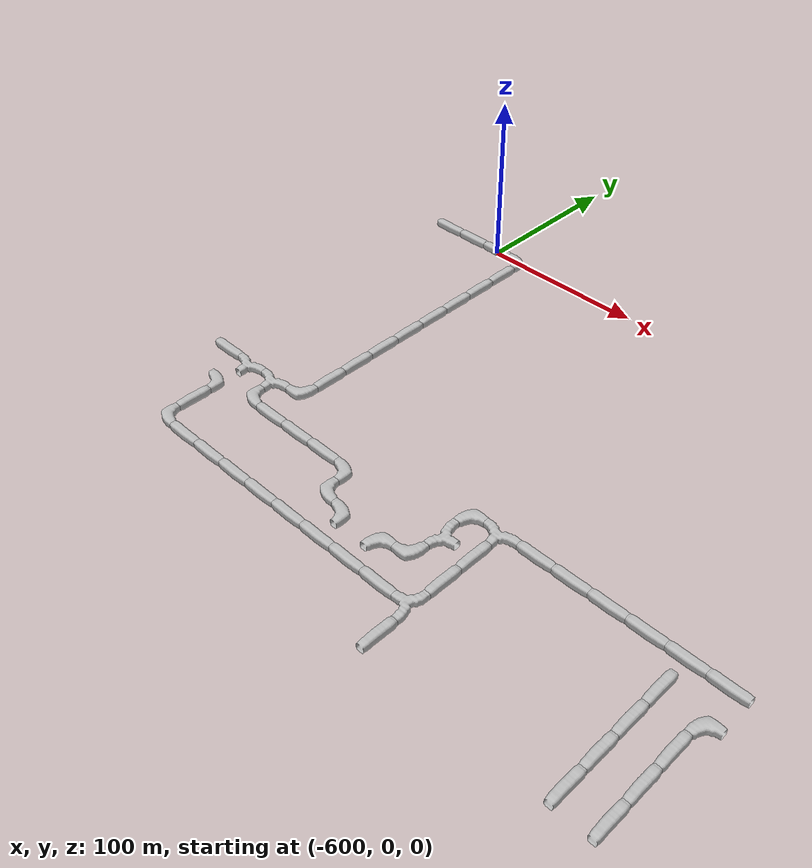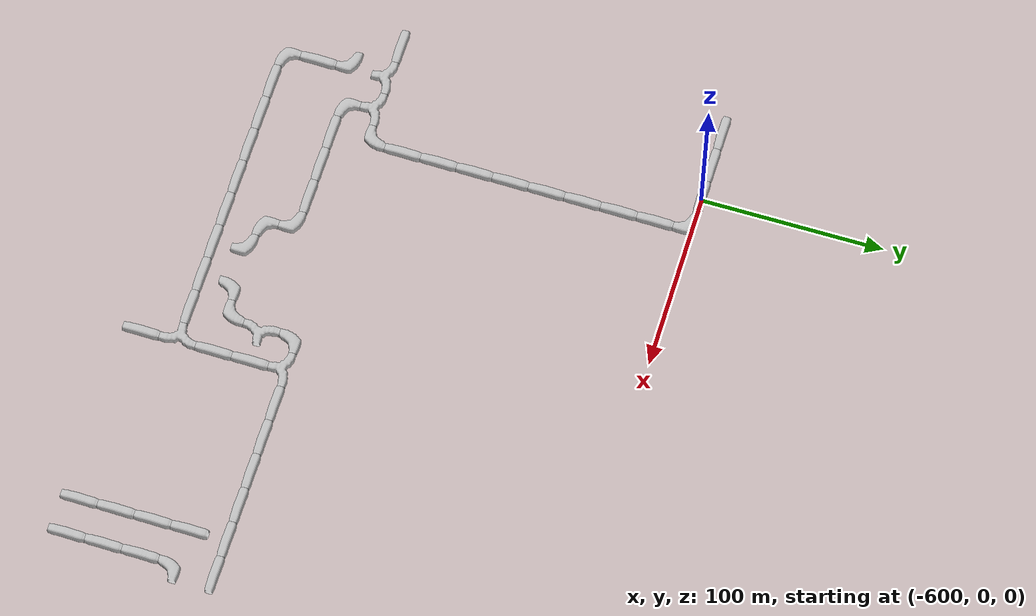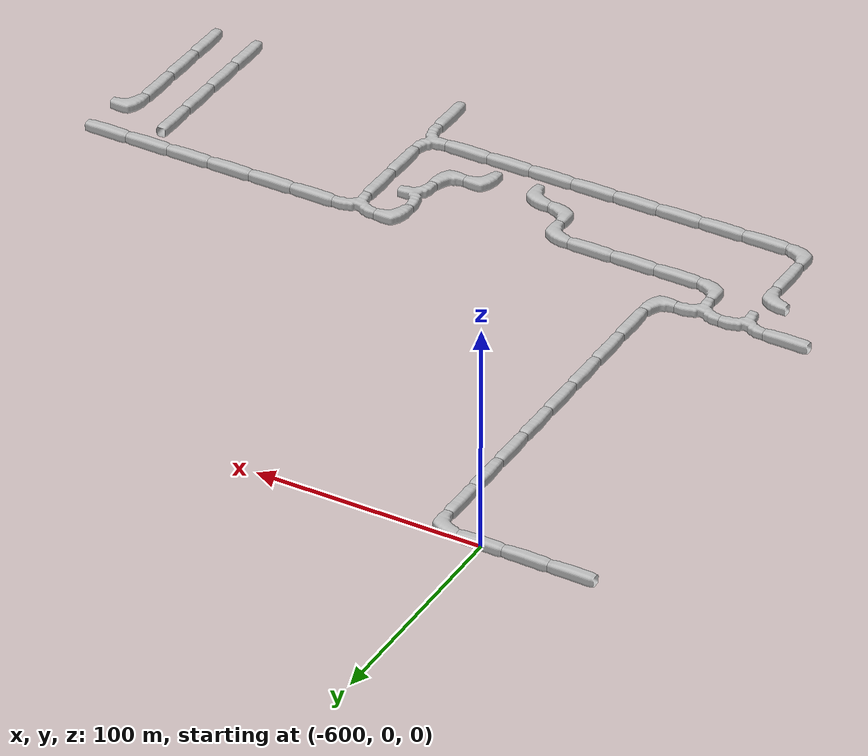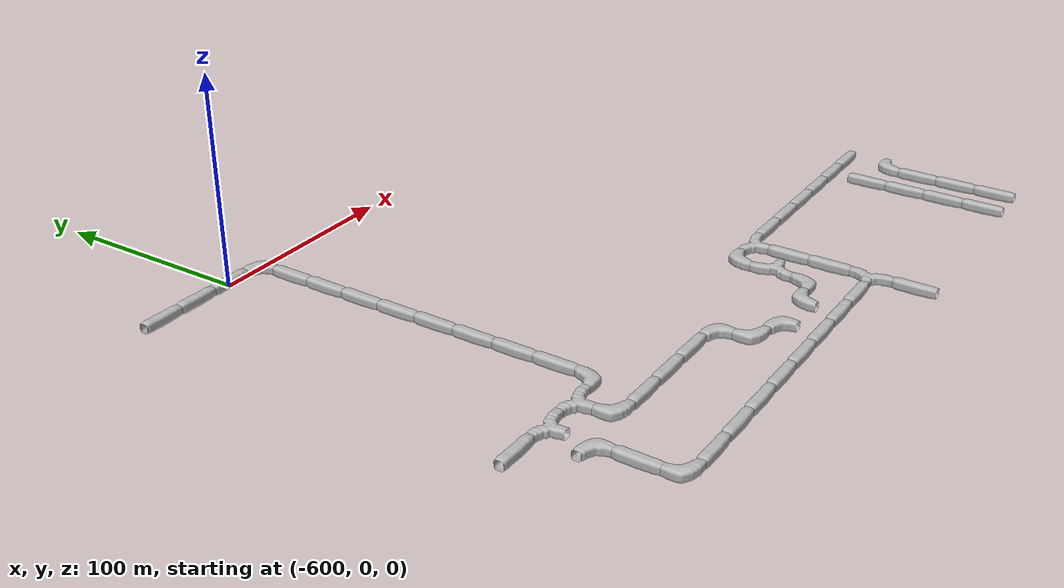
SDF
<sdf version="1.6">
 <world name="cave_32000_64">
  <include>
   <static>true</static>
   <name>cave_-16_-9</name>
   <pose>-320 -180 0 0 0 1.5707963267948966</pose>
   <uri>model://cave_straight_20m</uri>
  </include>
  <include>
   <static>true</static>
   <name>cave_-17_-9</name>
   <pose>-340 -180 0 0 0 1.5707963267948966</pose>
   <uri>model://cave_straight_20m</uri>
  </include>
  <include>
   <static>true</static>
   <name>cave_-18_-9</name>
   <pose>-360 -180 0 0 0 1.5707963267948966</pose>
   <uri>model://cave_straight_20m</uri>
  </include>
  <include>
   <static>true</static>
   <name>cave_-19_-9</name>
   <pose>-380 -180 0 0 0 1.5707963267948966</pose>
   <uri>model://cave_straight_20m</uri>
  </include>
  <include>
   <static>true</static>
   <name>cave_-20_-9</name>
   <pose>-400 -180 0 0 0 1.5707963267948966</pose>
   <uri>model://cave_straight_20m</uri>
  </include>
  <include>
   <static>true</static>
   <name>cave_-21_-9</name>
   <pose>-420 -180 0 0 0 1.5707963267948966</pose>
   <uri>model://cave_straight_20m</uri>
  </include>
  <include>
   <static>true</static>
   <name>cave_-22_-9</name>
   <pose>-440 -180 0 0 0 3.141592653589793</pose>
   <uri>model://cave_3way_20m</uri>
  </include>
  <include>
   <static>true</static>
   <name>cave_-22_-10</name>
   <pose>-440 -200 0 0 0 0.0</pose>
   <uri>model://cave_straight_20m</uri>
  </include>
  <include>
   <static>true</static>
   <name>cave_-22_-11</name>
   <pose>-440 -220 0 0 0 0.0</pose>
   <uri>model://cave_straight_20m</uri>
  </include>
  <include>
   <static>true</static>
   <name>cave_-22_-12</name>
   <pose>-440 -240 0 0 0 1.5707963267948966</pose>
   <uri>model://cave_3way_20m</uri>
  </include>
  <include>
   <static>true</static>
   <name>cave_-22_-13</name>
   <pose>-440 -260 0 0 0 0.0</pose>
   <uri>model://cave_straight_20m</uri>
  </include>
  <include>
   <static>true</static>
   <name>cave_-16_-13</name>
   <pose>-320 -260 0 0 0 0.0</pose>
   <uri>model://cave_straight_20m</uri>
  </include>
  <include>
   <static>true</static>
   <name>cave_-16_-12</name>
   <pose>-320 -240 0 0 0 0.0</pose>
   <uri>model://cave_straight_20m</uri>
  </include>
  <include>
   <static>true</static>
   <name>cave_-16_-11</name>
   <pose>-320 -220 0 0 0 0.0</pose>
   <uri>model://cave_straight_20m</uri>
  </include>
  <include>
   <static>true</static>
   <name>cave_-16_-10</name>
   <pose>-320 -200 0 0 0 -1.5707963267948966</pose>
   <uri>model://cave_L_20m</uri>
  </include>
  <include>
   <static>true</static>
   <name>cave_-17_-13</name>
   <pose>-340 -260 0 0 0 0.0</pose>
   <uri>model://cave_straight_20m</uri>
  </include>
  <include>
   <static>true</static>
   <name>cave_-17_-12</name>
   <pose>-340 -240 0 0 0 0.0</pose>
   <uri>model://cave_straight_20m</uri>
  </include>
  <include>
   <static>true</static>
   <name>cave_-17_-11</name>
   <pose>-340 -220 0 0 0 0.0</pose>
   <uri>model://cave_straight_20m</uri>
  </include>
  <include>
   <static>true</static>
   <name>cave_-17_-10</name>
   <pose>-340 -200 0 0 0 0.0</pose>
   <uri>model://cave_straight_20m</uri>
  </include>
  <include>
   <static>true</static>
   <name>cave_-23_-12</name>
   <pose>-460 -240 0 0 0 1.5707963267948966</pose>
   <uri>model://cave_straight_20m</uri>
  </include>
  <include>
   <static>true</static>
   <name>cave_-24_-12</name>
   <pose>-480 -240 0 0 0 1.5707963267948966</pose>
   <uri>model://cave_straight_20m</uri>
  </include>
  <include>
   <static>true</static>
   <name>cave_-25_-12</name>
   <pose>-500 -240 0 0 0 1.5707963267948966</pose>
   <uri>model://cave_straight_20m</uri>
  </include>
  <include>
   <static>true</static>
   <name>cave_-26_-12</name>
   <pose>-520 -240 0 0 0 1.5707963267948966</pose>
   <uri>model://cave_straight_20m</uri>
  </include>
  <include>
   <static>true</static>
   <name>cave_-27_-12</name>
   <pose>-540 -240 0 0 0 1.5707963267948966</pose>
   <uri>model://cave_straight_20m</uri>
  </include>
  <include>
   <static>true</static>
   <name>cave_-28_-12</name>
   <pose>-560 -240 0 0 0 1.5707963267948966</pose>
   <uri>model://cave_straight_20m</uri>
  </include>
  <include>
   <static>true</static>
   <name>cave_-29_-12</name>
   <pose>-580 -240 0 0 0 1.5707963267948966</pose>
   <uri>model://cave_straight_20m</uri>
  </include>
  <include>
   <static>true</static>
   <name>cave_-30_-12</name>
   <pose>-600 -240 0 0 0 1.5707963267948966</pose>
   <uri>model://cave_straight_20m</uri>
  </include>
  <include>
   <static>true</static>
   <name>cave_-31_-12</name>
   <pose>-620 -240 0 0 0 0.0</pose>
   <uri>model://cave_L_20m</uri>
  </include>
  <include>
   <static>true</static>
   <name>cave_-31_-11</name>
   <pose>-620 -220 0 0 0 0.0</pose>
   <uri>model://cave_straight_20m</uri>
  </include>
  <include>
   <static>true</static>
   <name>cave_-31_-10</name>
   <pose>-620 -200 0 0 0 3.141592653589793</pose>
   <uri>model://cave_L_20m</uri>
  </include>
  <include>
   <static>true</static>
   <name>cave_-32_0</name>
   <pose>-640 0 0 0 0 1.5707963267948966</pose>
   <uri>model://cave_straight_20m</uri>
  </include>
  <include>
   <static>true</static>
   <name>cave_-31_0</name>
   <pose>-620 0 0 0 0 1.5707963267948966</pose>
   <uri>model://cave_straight_20m</uri>
  </include>
  <include>
   <static>true</static>
   <name>cave_-30_0</name>
   <pose>-600 0 0 0 0 1.5707963267948966</pose>
   <uri>model://cave_straight_20m</uri>
  </include>
  <include>
   <static>true</static>
   <name>cave_-29_0</name>
   <pose>-580 0 0 0 0 3.141592653589793</pose>
   <uri>model://cave_L_20m</uri>
  </include>
  <include>
   <static>true</static>
   <name>cave_-29_-1</name>
   <pose>-580 -20 0 0 0 0.0</pose>
   <uri>model://cave_straight_20m</uri>
  </include>
  <include>
   <static>true</static>
   <name>cave_-29_-2</name>
   <pose>-580 -40 0 0 0 0.0</pose>
   <uri>model://cave_straight_20m</uri>
  </include>
  <include>
   <static>true</static>
   <name>cave_-29_-3</name>
   <pose>-580 -60 0 0 0 0.0</pose>
   <uri>model://cave_straight_20m</uri>
  </include>
  <include>
   <static>true</static>
   <name>cave_-29_-4</name>
   <pose>-580 -80 0 0 0 0.0</pose>
   <uri>model://cave_straight_20m</uri>
  </include>
  <include>
   <static>true</static>
   <name>cave_-29_-5</name>
   <pose>-580 -100 0 0 0 0.0</pose>
   <uri>model://cave_straight_20m</uri>
  </include>
  <include>
   <static>true</static>
   <name>cave_-29_-6</name>
   <pose>-580 -120 0 0 0 0.0</pose>
   <uri>model://cave_straight_20m</uri>
  </include>
  <include>
   <static>true</static>
   <name>cave_-29_-7</name>
   <pose>-580 -140 0 0 0 0.0</pose>
   <uri>model://cave_straight_20m</uri>
  </include>
  <include>
   <static>true</static>
   <name>cave_-29_-8</name>
   <pose>-580 -160 0 0 0 0.0</pose>
   <uri>model://cave_straight_20m</uri>
  </include>
  <include>
   <static>true</static>
   <name>cave_-29_-9</name>
   <pose>-580 -180 0 0 0 1.5707963267948966</pose>
   <uri>model://cave_L_20m</uri>
  </include>
  <include>
   <static>true</static>
   <name>cave_-30_-9</name>
   <pose>-600 -180 0 0 0 3.141592653589793</pose>
   <uri>model://cave_3way_20m</uri>
  </include>
  <include>
   <static>true</static>
   <name>cave_-30_-10</name>
   <pose>-600 -200 0 0 0 0.0</pose>
   <uri>model://cave_L_20m</uri>
  </include>
  <include>
   <static>true</static>
   <name>cave_-29_-10</name>
   <pose>-580 -200 0 0 0 1.5707963267948966</pose>
   <uri>model://cave_straight_20m</uri>
  </include>
  <include>
   <static>true</static>
   <name>cave_-28_-10</name>
   <pose>-560 -200 0 0 0 1.5707963267948966</pose>
   <uri>model://cave_straight_20m</uri>
  </include>
  <include>
   <static>true</static>
   <name>cave_-27_-10</name>
   <pose>-540 -200 0 0 0 1.5707963267948966</pose>
   <uri>model://cave_straight_20m</uri>
  </include>
  <include>
   <static>true</static>
   <name>cave_-26_-10</name>
   <pose>-520 -200 0 0 0 3.141592653589793</pose>
   <uri>model://cave_L_20m</uri>
  </include>
  <include>
   <static>true</static>
   <name>cave_-26_-11</name>
   <pose>-520 -220 0 0 0 0.0</pose>
   <uri>model://cave_L_20m</uri>
  </include>
  <include>
   <static>true</static>
   <name>cave_-25_-11</name>
   <pose>-500 -220 0 0 0 3.141592653589793</pose>
   <uri>model://cave_L_20m</uri>
  </include>
  <include>
   <static>true</static>
   <name>cave_-31_-9</name>
   <pose>-620 -180 0 0 0 3.141592653589793</pose>
   <uri>model://cave_3way_20m</uri>
  </include>
  <include>
   <static>true</static>
   <name>cave_-32_-9</name>
   <pose>-640 -180 0 0 0 1.5707963267948966</pose>
   <uri>model://cave_straight_20m</uri>
  </include>
  <include>
   <static>true</static>
   <name>cave_-23_-9</name>
   <pose>-460 -180 0 0 0 -1.5707963267948966</pose>
   <uri>model://cave_L_20m</uri>
  </include>
  <include>
   <static>true</static>
   <name>cave_-23_-10</name>
   <pose>-460 -200 0 0 0 -1.5707963267948966</pose>
   <uri>model://cave_3way_20m</uri>
  </include>
  <include>
   <static>true</static>
   <name>cave_-23_-11</name>
   <pose>-460 -220 0 0 0 1.5707963267948966</pose>
   <uri>model://cave_L_20m</uri>
  </include>
  <include>
   <static>true</static>
   <name>cave_-24_-11</name>
   <pose>-480 -220 0 0 0 -1.5707963267948966</pose>
   <uri>model://cave_L_20m</uri>
  </include>
 </world>
</sdf>
